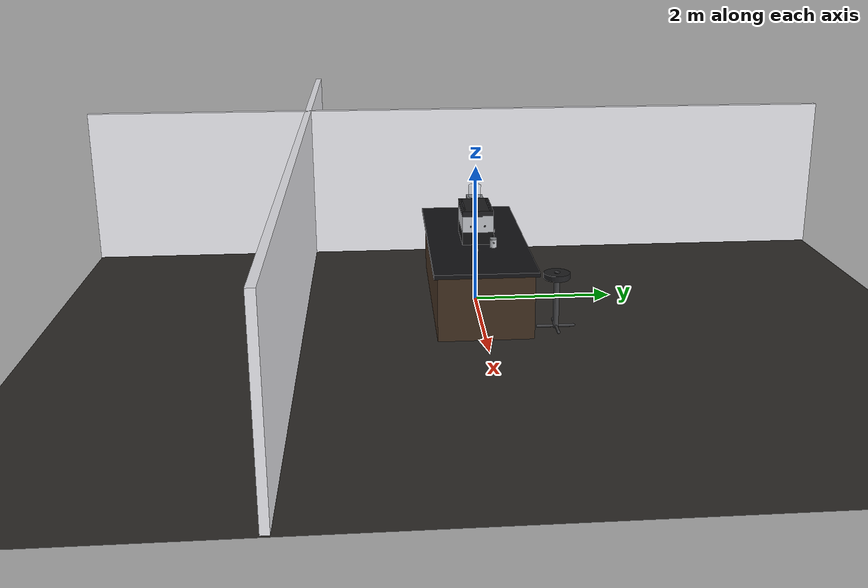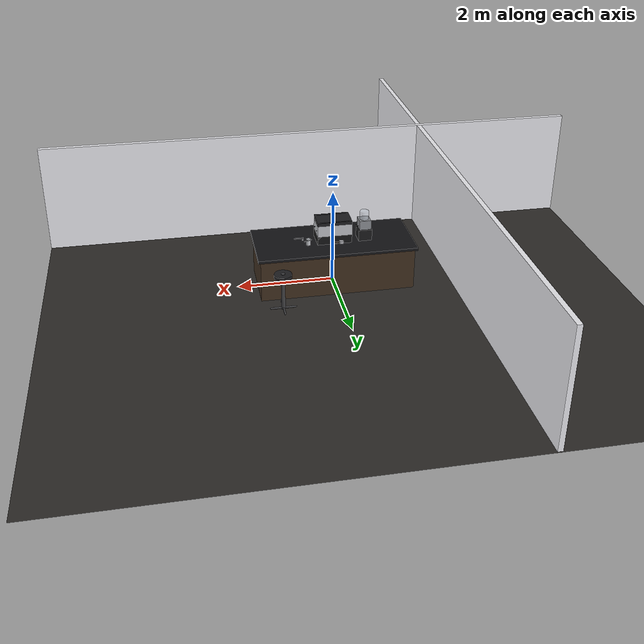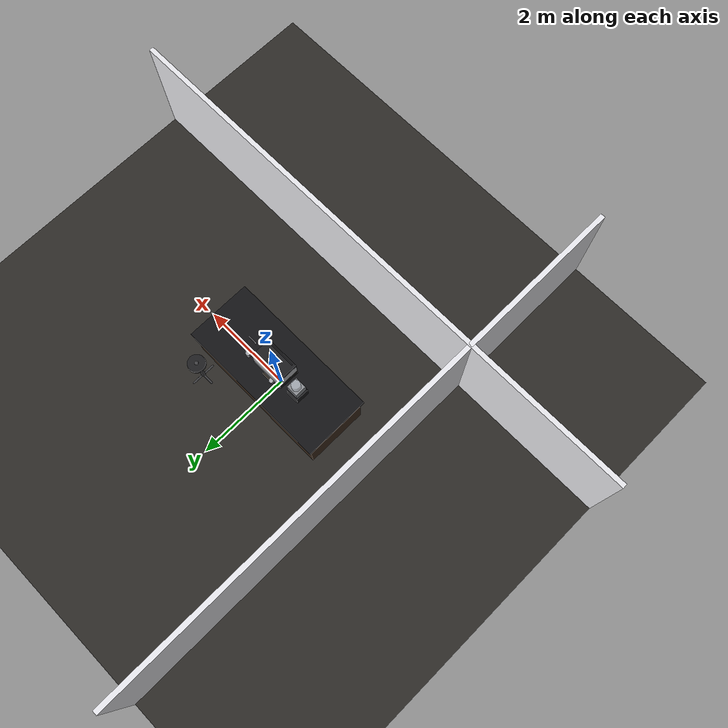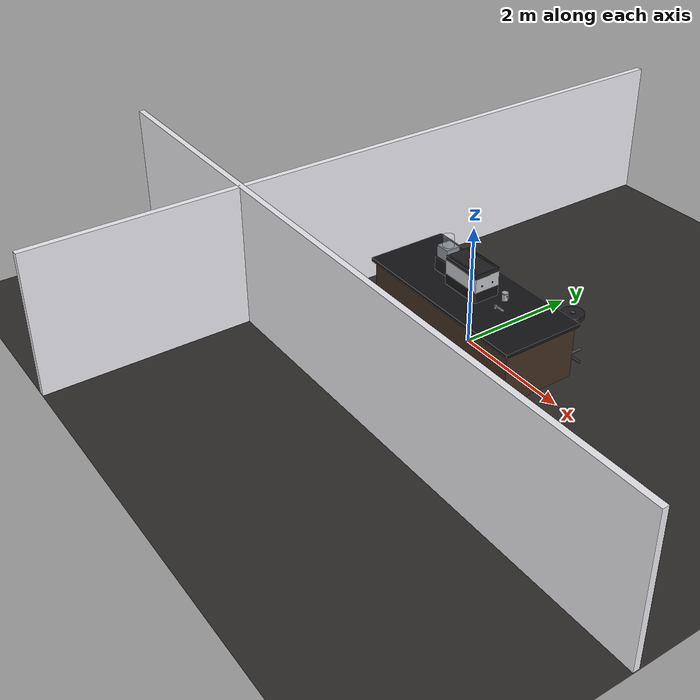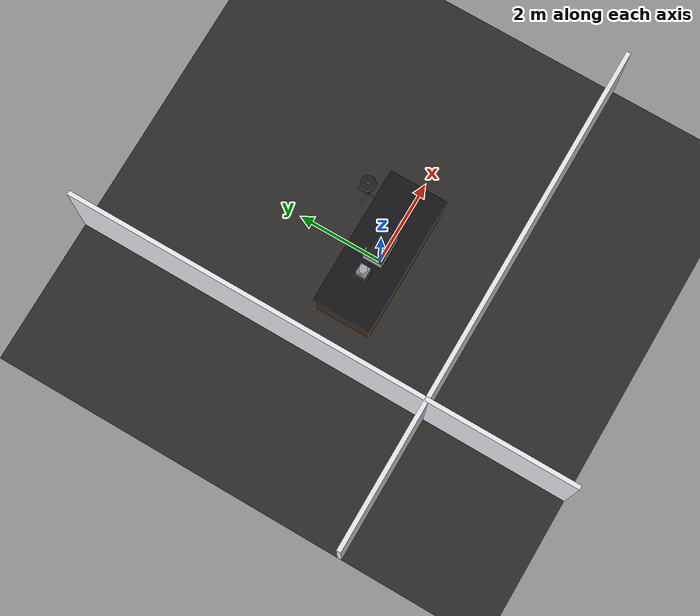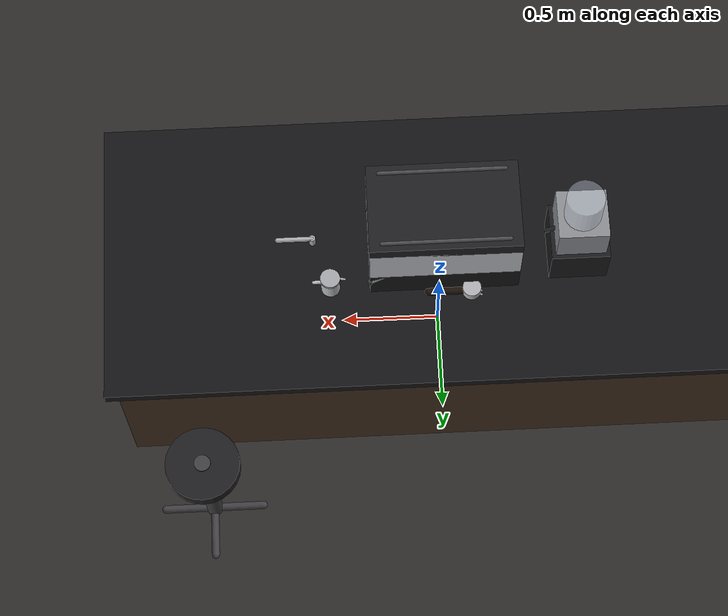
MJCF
<mujoco model="coffee_shop_espresso_machine">
  <compiler angle="degree" coordinate="local"/>
  <option timestep="0.002" gravity="0 0 -9.81" integrator="RK4"/>
  <size njmax="2000" nconmax="400"/>

  <default>
    <geom contype="1" conaffinity="1" friction="0.9 0.1 0.001" solref="0.02 1" solimp="0.9 0.95 0.001" rgba="0.8 0.8 0.8 1"/>
    <joint damping="1" armature="0.01" limited="true"/>
  </default>

  <worldbody>
    <!-- Floor -->
    <geom name="floor" type="plane" pos="0 0 0" size="6 6 0.1" rgba="0.18 0.17 0.16 1"
          contype="1" conaffinity="1" friction="1.2 0.1 0.001"/>

    <!-- Back wall -->
    <geom name="wall_back" type="box" pos="0 -2.5 1.2" size="6 0.05 1.2" rgba="0.92 0.92 0.94 1"
          contype="1" conaffinity="1"/>
    <!-- Side wall -->
    <geom name="wall_side" type="box" pos="-2.5 0 1.2" size="0.05 6 1.2" rgba="0.93 0.93 0.95 1"
          contype="1" conaffinity="1"/>

    <!-- Counter / bar -->
    <body name="counter" pos="0 0 0">
      <geom name="counter_base" type="box" pos="0 0 0.45" size="1.6 0.65 0.45" rgba="0.25 0.18 0.12 1"
            contype="1" conaffinity="1" friction="1.0 0.1 0.001"/>
      <geom name="counter_top" type="box" pos="0 0 0.92" size="1.65 0.7 0.03" rgba="0.08 0.08 0.09 1"
            contype="1" conaffinity="1" friction="1.1 0.1 0.001"/>

      <!-- Espresso machine (high-end) sitting on counter -->
      <body name="espresso_machine" pos="0 0 0.95">
        <!-- Machine chassis -->
        <geom name="machine_base" type="box" pos="0 0 0.09" size="0.36 0.22 0.09" rgba="0.08 0.08 0.085 1"
              contype="1" conaffinity="1"/>
        <geom name="machine_shell" type="box" pos="0 0 0.30" size="0.36 0.22 0.12" rgba="0.75 0.76 0.78 1"
              contype="1" conaffinity="1"/>
        <geom name="machine_top" type="box" pos="0 0 0.45" size="0.36 0.22 0.04" rgba="0.12 0.12 0.13 1"
              contype="1" conaffinity="1"/>

        <!-- Drip tray -->
        <geom name="drip_tray" type="box" pos="0.0 0.0 0.11" size="0.33 0.18 0.01" rgba="0.15 0.15 0.16 1"
              contype="1" conaffinity="1" friction="0.9 0.1 0.001"/>

        <!-- Front panel / grouphead housing -->
        <geom name="front_panel" type="box" pos="0.26 0 0.26" size="0.08 0.20 0.13" rgba="0.65 0.66 0.68 1"
              contype="1" conaffinity="1"/>

        <!-- Dual groupheads -->
        <body name="grouphead_left" pos="0.30 0.10 0.27">
          <geom name="gh_left" type="cylinder" pos="0 0 0" size="0.035 0.045" rgba="0.20 0.20 0.21 1"
                contype="1" conaffinity="1"/>
          <geom name="gh_left_nose" type="cylinder" pos="0.05 0 0" size="0.012 0.02" rgba="0.18 0.18 0.19 1"
                euler="0 90 0" contype="1" conaffinity="1"/>
        </body>

        <body name="grouphead_right" pos="0.30 -0.10 0.27">
          <geom name="gh_right" type="cylinder" pos="0 0 0" size="0.035 0.045" rgba="0.20 0.20 0.21 1"
                contype="1" conaffinity="1"/>
          <geom name="gh_right_nose" type="cylinder" pos="0.05 0 0" size="0.012 0.02" rgba="0.18 0.18 0.19 1"
                euler="0 90 0" contype="1" conaffinity="1"/>
        </body>

        <!-- Steam wand (poseable hinge) -->
        <body name="steam_wand" pos="0.18 0.20 0.24">
          <joint name="steam_wand_yaw" type="hinge" axis="0 0 1" range="-70 70" damping="1.5"/>
          <geom name="steam_wand_arm" type="capsule" fromto="0 0 0  0.18 0.02 -0.12"
                size="0.008" rgba="0.70 0.70 0.72 1" contype="1" conaffinity="1"/>
          <geom name="steam_wand_tip" type="cylinder" pos="0.18 0.02 -0.12" size="0.01 0.015"
                rgba="0.25 0.25 0.26 1" contype="1" conaffinity="1"/>
        </body>

        <!-- Hot water spout -->
        <geom name="hot_water_spout" type="capsule" fromto="0.20 -0.18 0.28  0.28 -0.18 0.18"
              size="0.007" rgba="0.72 0.72 0.74 1" contype="1" conaffinity="1"/>

        <!-- Control panel / display -->
        <geom name="display" type="box" pos="0.28 0 0.41" size="0.06 0.16 0.03" rgba="0.02 0.02 0.025 1"
              contype="0" conaffinity="0"/>
        <geom name="display_glass" type="box" pos="0.285 0 0.41" size="0.002 0.15 0.028"
              rgba="0.08 0.10 0.12 0.6" contype="0" conaffinity="0"/>

        <!-- Cup rail on top -->
        <geom name="cup_rail_left" type="capsule" fromto="-0.30 0.18 0.49  0.30 0.18 0.49"
              size="0.01" rgba="0.30 0.30 0.32 1" contype="1" conaffinity="1"/>
        <geom name="cup_rail_right" type="capsule" fromto="-0.30 -0.18 0.49  0.30 -0.18 0.49"
              size="0.01" rgba="0.30 0.30 0.32 1" contype="1" conaffinity="1"/>
      </body>

      <!-- Coffee grinder next to machine (static) -->
      <body name="grinder" pos="-0.65 0.05 0.95">
        <geom name="grinder_base" type="box" pos="0 0 0.12" size="0.14 0.14 0.12" rgba="0.10 0.10 0.11 1"
              contype="1" conaffinity="1"/>
        <geom name="grinder_body" type="box" pos="0 0 0.34" size="0.12 0.12 0.10" rgba="0.55 0.56 0.58 1"
              contype="1" conaffinity="1"/>
        <geom name="grinder_hopper" type="cylinder" pos="0 0 0.52" size="0.09 0.10"
              rgba="0.85 0.90 0.95 0.35" contype="0" conaffinity="0"/>
        <geom name="grinder_spout" type="capsule" fromto="0.10 0 0.30  0.16 0 0.26"
              size="0.01" rgba="0.20 0.20 0.21 1" contype="1" conaffinity="1"/>
      </body>

      <!-- Sink inset on counter (static) -->
      <body name="sink" pos="0.75 -0.05 0.92">
        <geom name="sink_cutout" type="box" pos="0 0 -0.02" size="0.22 0.18 0.02"
              rgba="0.06 0.06 0.065 1" contype="0" conaffinity="0"/>
        <geom name="sink_basin" type="box" pos="0 0 -0.09" size="0.20 0.16 0.07"
              rgba="0.65 0.66 0.68 1" contype="1" conaffinity="1"/>
        <geom name="faucet_stem" type="cylinder" pos="-0.12 0 0.04" size="0.015 0.05"
              rgba="0.70 0.70 0.72 1" contype="1" conaffinity="1"/>
        <geom name="faucet_spout" type="capsule" fromto="-0.12 0 0.08  0.05 0 0.08"
              size="0.012" rgba="0.70 0.70 0.72 1" contype="1" conaffinity="1"/>
      </body>
    </body>

    <!-- Small movable objects: cups -->
    <body name="cup_1" pos="0.18 0.10 0.97">
      <freejoint/>
      <geom name="cup1_outer" type="cylinder" pos="0 0 0.05" size="0.035 0.05"
            rgba="0.95 0.95 0.96 1" contype="1" conaffinity="1" friction="0.8 0.1 0.001"/>
      <geom name="cup1_inner" type="cylinder" pos="0 0 0.055" size="0.032 0.045"
            rgba="0.90 0.90 0.92 1" contype="0" conaffinity="0"/>
      <geom name="cup1_handle" type="capsule" fromto="0.035 0 0.06  0.060 0 0.06"
            size="0.007" rgba="0.95 0.95 0.96 1" contype="1" conaffinity="1"/>
    </body>

    <body name="cup_2" pos="0.18 -0.10 0.97">
      <freejoint/>
      <geom name="cup2_outer" type="cylinder" pos="0 0 0.05" size="0.035 0.05"
            rgba="0.96 0.96 0.97 1" contype="1" conaffinity="1" friction="0.8 0.1 0.001"/>
      <geom name="cup2_inner" type="cylinder" pos="0 0 0.055" size="0.032 0.045"
            rgba="0.90 0.90 0.92 1" contype="0" conaffinity="0"/>
      <geom name="cup2_handle" type="capsule" fromto="0.035 0 0.06  0.060 0 0.06"
            size="0.007" rgba="0.96 0.96 0.97 1" contype="1" conaffinity="1"/>
    </body>

    <!-- Movable portafilter on counter -->
    <body name="portafilter" pos="-0.10 0.25 0.97">
      <freejoint/>
      <geom name="pf_handle" type="capsule" fromto="0 0 0.02  0.18 0 0.02"
            size="0.018" rgba="0.10 0.07 0.04 1" contype="1" conaffinity="1"/>
      <geom name="pf_head" type="cylinder" pos="-0.03 0 0.03" size="0.045 0.025"
            rgba="0.70 0.70 0.72 1" contype="1" conaffinity="1"/>
      <geom name="pf_spout" type="capsule" fromto="-0.05 0.01 0.00  -0.08 0.01 -0.02"
            size="0.006" rgba="0.65 0.65 0.67 1" contype="1" conaffinity="1"/>
      <geom name="pf_spout2" type="capsule" fromto="-0.05 -0.01 0.00  -0.08 -0.01 -0.02"
            size="0.006" rgba="0.65 0.65 0.67 1" contype="1" conaffinity="1"/>
    </body>

    <!-- Movable milk pitcher -->
    <body name="milk_pitcher" pos="0.55 0.20 0.97">
      <freejoint/>
      <geom name="pitcher_body" type="cylinder" pos="0 0 0.06" size="0.045 0.06"
            rgba="0.75 0.76 0.78 1" contype="1" conaffinity="1" friction="0.7 0.1 0.001"/>
      <geom name="pitcher_rim" type="cylinder" pos="0 0 0.12" size="0.048 0.008"
            rgba="0.65 0.66 0.68 1" contype="1" conaffinity="1"/>
      <geom name="pitcher_handle" type="capsule" fromto="0.045 0 0.08  0.080 0 0.08"
            size="0.009" rgba="0.75 0.76 0.78 1" contype="1" conaffinity="1"/>
      <geom name="pitcher_spout" type="capsule" fromto="-0.045 0 0.115  -0.070 0 0.105"
            size="0.006" rgba="0.65 0.66 0.68 1" contype="1" conaffinity="1"/>
    </body>

    <!-- Simple bar stool (static) -->
    <body name="stool" pos="1.2 1.0 0">
      <geom name="stool_seat" type="cylinder" pos="0 0 0.75" size="0.18 0.04"
            rgba="0.12 0.12 0.13 1" contype="1" conaffinity="1"/>
      <geom name="stool_post" type="cylinder" pos="0 0 0.40" size="0.04 0.40"
            rgba="0.25 0.25 0.26 1" contype="1" conaffinity="1"/>
      <geom name="stool_base1" type="capsule" fromto="0 0 0.02  0.25 0 0.02"
            size="0.02" rgba="0.25 0.25 0.26 1" contype="1" conaffinity="1"/>
      <geom name="stool_base2" type="capsule" fromto="0 0 0.02  -0.25 0 0.02"
            size="0.02" rgba="0.25 0.25 0.26 1" contype="1" conaffinity="1"/>
      <geom name="stool_base3" type="capsule" fromto="0 0 0.02  0 0.25 0.02"
            size="0.02" rgba="0.25 0.25 0.26 1" contype="1" conaffinity="1"/>
      <geom name="stool_base4" type="capsule" fromto="0 0 0.02  0 -0.25 0.02"
            size="0.02" rgba="0.25 0.25 0.26 1" contype="1" conaffinity="1"/>
    </body>

    <!-- Lighting -->
    <light name="ceiling_light" pos="0 0 3.0" dir="0 0 -1" diffuse="0.9 0.9 0.9" specular="0.2 0.2 0.2"/>
    <light name="bar_light" pos="0.0 0.2 1.8" dir="0 0 -1" diffuse="0.7 0.7 0.7" specular="0.2 0.2 0.2"/>
  </worldbody>

  <visual>
    <headlight diffuse="0.4 0.4 0.4" ambient="0.2 0.2 0.2" specular="0.1 0.1 0.1"/>
    <rgba haze="0.9 0.9 0.92 1"/>
  </visual>
</mujoco>
